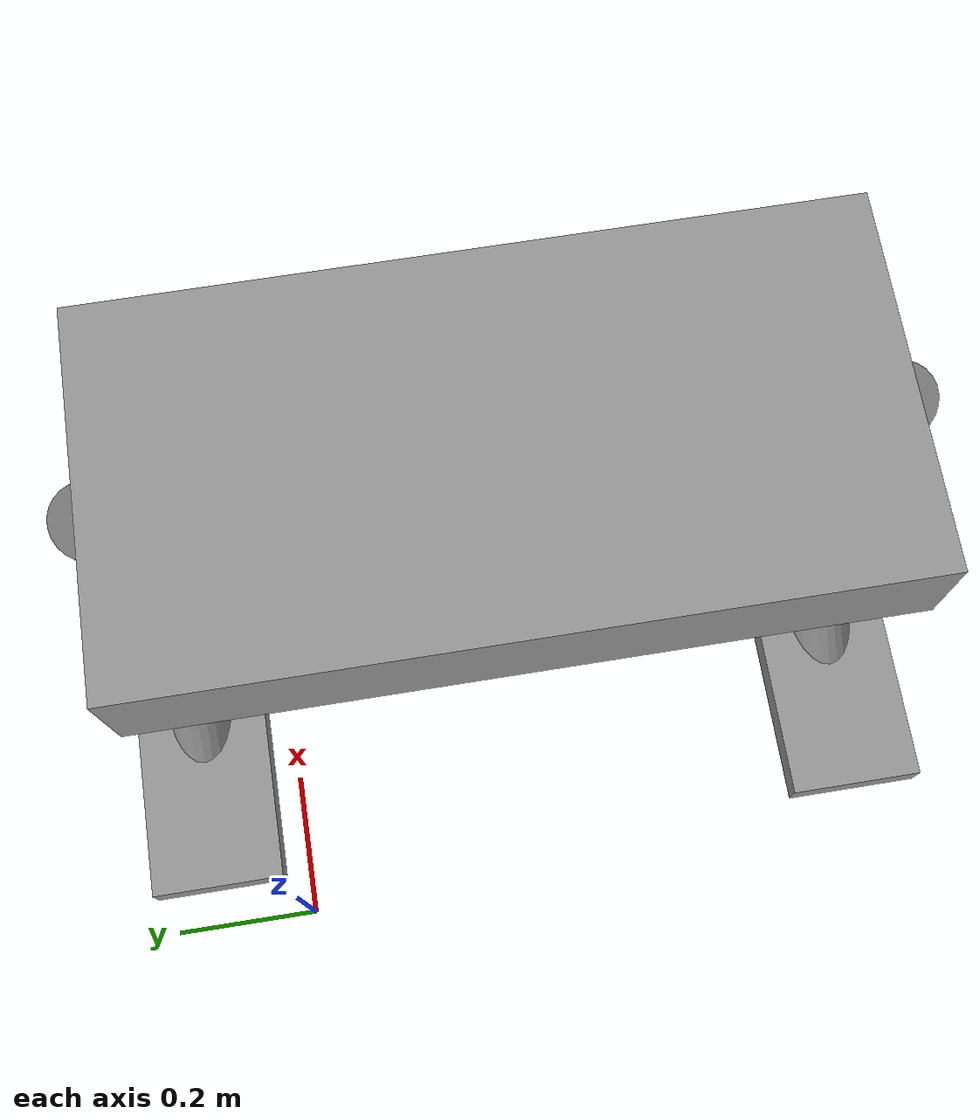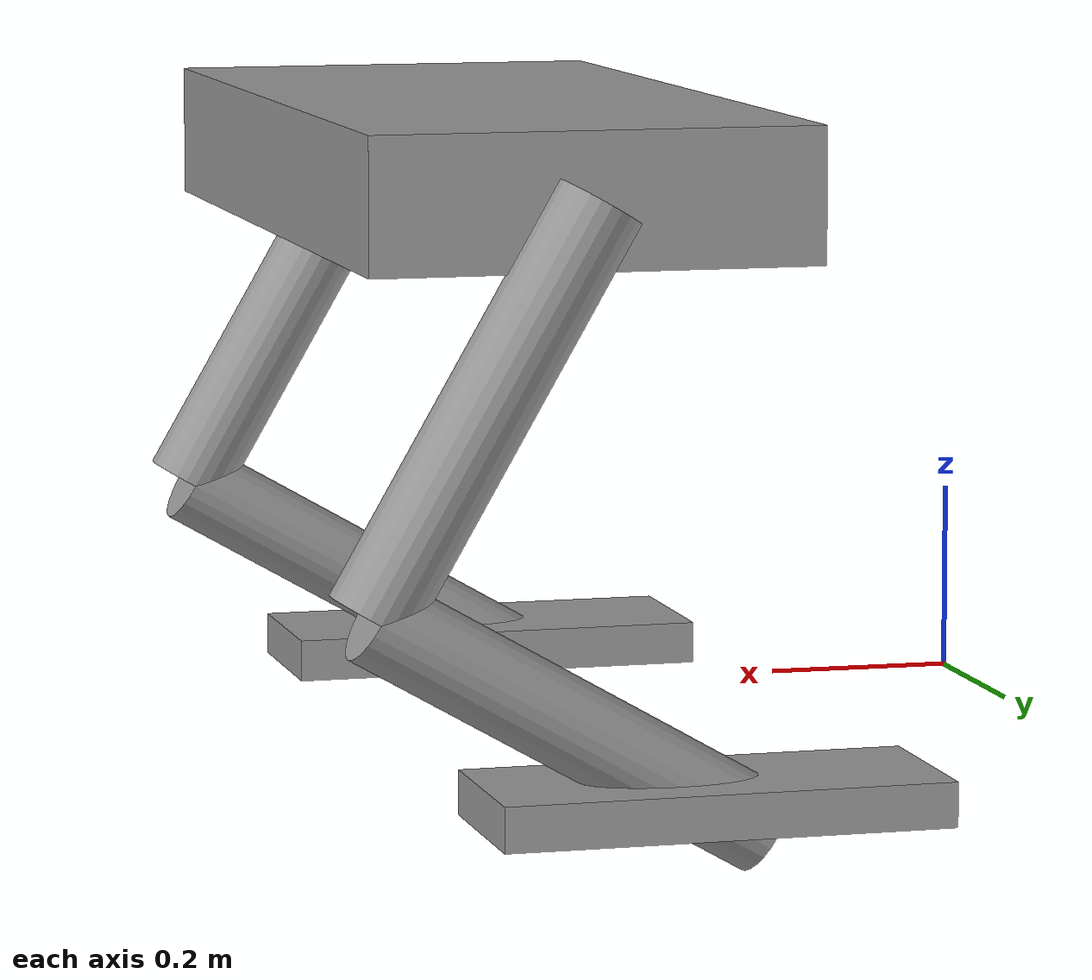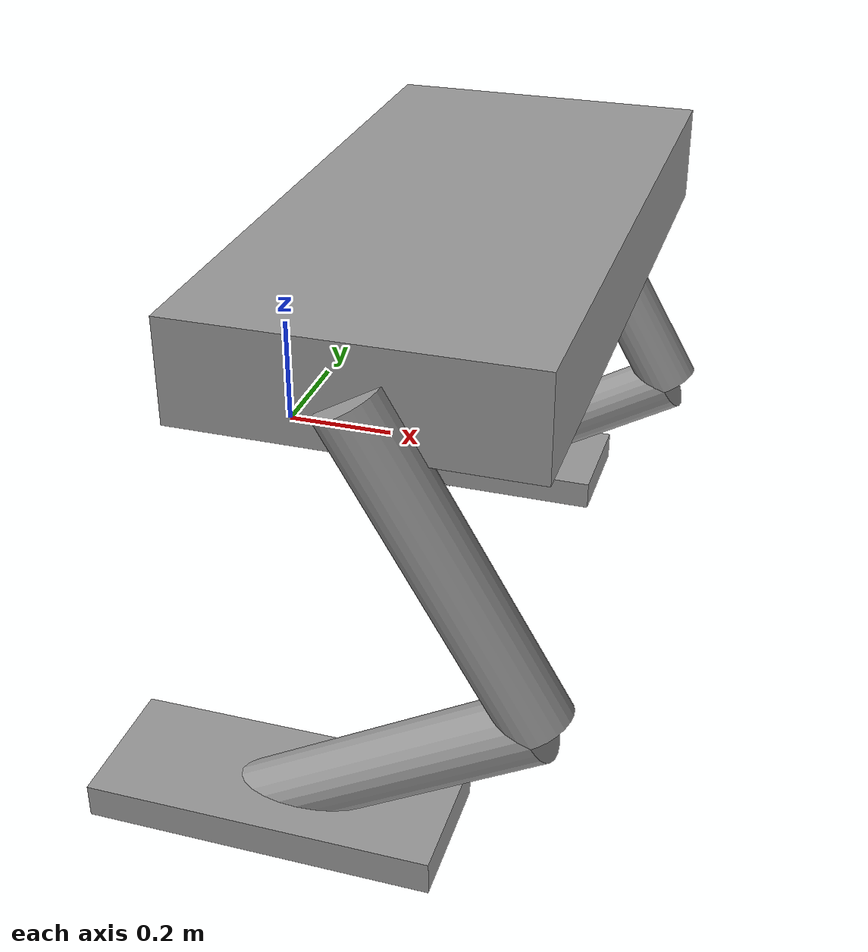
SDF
<?xml version='1.0'?>
<sdf version='1.7'>
  <model name='HumanoidRobot'>
    <link name='link_0'>
      <inertial>
        <mass>1</mass>
        <inertia>
          <ixx>0.166667</ixx>
          <ixy>0</ixy>
          <ixz>0</ixz>
          <iyy>0.166667</iyy>
          <iyz>0</iyz>
          <izz>0.166667</izz>
        </inertia>
        <pose>0 0 0 0 -0 0</pose>
      </inertial>
      <pose>0.440203 -0.34659 0.542291 0 -0 0</pose>
      <gravity>1</gravity>
      <self_collide>0</self_collide>
      <kinematic>0</kinematic>
      <enable_wind>0</enable_wind>
      <visual name='visual'>
        <pose>0 0 0 0 -0 0</pose>
        <geometry>
          <box>
            <size>0.5 1 0.15</size>
          </box>
        </geometry>
        <material>
          <lighting>1</lighting>
          <script>
            <uri>file://media/materials/scripts/gazebo.material</uri>
            <name>Gazebo/Grey</name>
          </script>
          <shader type='pixel'>
            <normal_map>__default__</normal_map>
          </shader>
          <ambient>0.3 0.3 0.3 1</ambient>
          <diffuse>0.7 0.7 0.7 1</diffuse>
          <specular>0.01 0.01 0.01 1</specular>
          <emissive>0 0 0 1</emissive>
        </material>
        <transparency>0</transparency>
        <cast_shadows>1</cast_shadows>
      </visual>
      <collision name='collision'>
        <laser_retro>0</laser_retro>
        <max_contacts>10</max_contacts>
        <pose>0 0 0 0 -0 0</pose>
        <geometry>
          <box>
            <size>0.5 1 0.15</size>
          </box>
        </geometry>
        <surface>
          <friction>
            <ode>
              <mu>1</mu>
              <mu2>1</mu2>
              <fdir1>0 0 0</fdir1>
              <slip1>0</slip1>
              <slip2>0</slip2>
            </ode>
            <torsional>
              <coefficient>1</coefficient>
              <patch_radius>0</patch_radius>
              <surface_radius>0</surface_radius>
              <use_patch_radius>1</use_patch_radius>
              <ode>
                <slip>0</slip>
              </ode>
            </torsional>
          </friction>
          <bounce>
            <restitution_coefficient>0</restitution_coefficient>
            <threshold>1e+06</threshold>
          </bounce>
          <contact>
            <collide_without_contact>0</collide_without_contact>
            <collide_without_contact_bitmask>1</collide_without_contact_bitmask>
            <collide_bitmask>1</collide_bitmask>
            <ode>
              <soft_cfm>0</soft_cfm>
              <soft_erp>0.2</soft_erp>
              <kp>1e+13</kp>
              <kd>1</kd>
              <max_vel>0.01</max_vel>
              <min_depth>0</min_depth>
            </ode>
            <bullet>
              <split_impulse>1</split_impulse>
              <split_impulse_penetration_threshold>-0.01</split_impulse_penetration_threshold>
              <soft_cfm>0</soft_cfm>
              <soft_erp>0.2</soft_erp>
              <kp>1e+13</kp>
              <kd>1</kd>
            </bullet>
          </contact>
        </surface>
      </collision>
    </link>
    <link name='link_1'>
      <inertial>
        <mass>1</mass>
        <inertia>
          <ixx>0.145833</ixx>
          <ixy>0</ixy>
          <ixz>0</ixz>
          <iyy>0.145833</iyy>
          <iyz>0</iyz>
          <izz>0.125</izz>
        </inertia>
        <pose>0 0 0 0 -0 0</pose>
      </inertial>
      <pose>0.565203 -0.84659 0.325785 0 -0.523598 0</pose>
      <gravity>1</gravity>
      <self_collide>0</self_collide>
      <kinematic>0</kinematic>
      <enable_wind>0</enable_wind>
      <visual name='visual'>
        <pose>0 0 0 0 -0 0</pose>
        <geometry>
          <cylinder>
            <radius>0.05</radius>
            <length>0.5</length>
          </cylinder>
        </geometry>
        <material>
          <lighting>1</lighting>
          <script>
            <uri>file://media/materials/scripts/gazebo.material</uri>
            <name>Gazebo/Grey</name>
          </script>
          <shader type='pixel'>
            <normal_map>__default__</normal_map>
          </shader>
          <ambient>0.3 0.3 0.3 1</ambient>
          <diffuse>0.7 0.7 0.7 1</diffuse>
          <specular>0.01 0.01 0.01 1</specular>
          <emissive>0 0 0 1</emissive>
        </material>
        <transparency>0</transparency>
        <cast_shadows>1</cast_shadows>
      </visual>
      <collision name='collision'>
        <laser_retro>0</laser_retro>
        <max_contacts>10</max_contacts>
        <pose>0 0 0 0 -0 0</pose>
        <geometry>
          <cylinder>
            <radius>0.05</radius>
            <length>0.5</length>
          </cylinder>
        </geometry>
        <surface>
          <friction>
            <ode>
              <mu>1</mu>
              <mu2>1</mu2>
              <fdir1>0 0 0</fdir1>
              <slip1>0</slip1>
              <slip2>0</slip2>
            </ode>
            <torsional>
              <coefficient>1</coefficient>
              <patch_radius>0</patch_radius>
              <surface_radius>0</surface_radius>
              <use_patch_radius>1</use_patch_radius>
              <ode>
                <slip>0</slip>
              </ode>
            </torsional>
          </friction>
          <bounce>
            <restitution_coefficient>0</restitution_coefficient>
            <threshold>1e+06</threshold>
          </bounce>
          <contact>
            <collide_without_contact>0</collide_without_contact>
            <collide_without_contact_bitmask>1</collide_without_contact_bitmask>
            <collide_bitmask>1</collide_bitmask>
            <ode>
              <soft_cfm>0</soft_cfm>
              <soft_erp>0.2</soft_erp>
              <kp>1e+13</kp>
              <kd>1</kd>
              <max_vel>0.01</max_vel>
              <min_depth>0</min_depth>
            </ode>
            <bullet>
              <split_impulse>1</split_impulse>
              <split_impulse_penetration_threshold>-0.01</split_impulse_penetration_threshold>
              <soft_cfm>0</soft_cfm>
              <soft_erp>0.2</soft_erp>
              <kp>1e+13</kp>
              <kd>1</kd>
            </bullet>
          </contact>
        </surface>
      </collision>
    </link>
    <link name='link_1_clone'>
      <inertial>
        <mass>1</mass>
        <inertia>
          <ixx>0.145833</ixx>
          <ixy>0</ixy>
          <ixz>0</ixz>
          <iyy>0.145833</iyy>
          <iyz>0</iyz>
          <izz>0.125</izz>
        </inertia>
        <pose>0 0 0 0 -0 0</pose>
      </inertial>
      <pose>0.565203 0.15341 0.325785 0 -0.523598 0</pose>
      <gravity>1</gravity>
      <self_collide>0</self_collide>
      <kinematic>0</kinematic>
      <enable_wind>0</enable_wind>
      <visual name='visual'>
        <pose>0 0 0 0 -0 0</pose>
        <geometry>
          <cylinder>
            <radius>0.05</radius>
            <length>0.5</length>
          </cylinder>
        </geometry>
        <material>
          <lighting>1</lighting>
          <script>
            <uri>file://media/materials/scripts/gazebo.material</uri>
            <name>Gazebo/Grey</name>
          </script>
          <shader type='pixel'>
            <normal_map>__default__</normal_map>
          </shader>
          <ambient>0.3 0.3 0.3 1</ambient>
          <diffuse>0.7 0.7 0.7 1</diffuse>
          <specular>0.01 0.01 0.01 1</specular>
          <emissive>0 0 0 1</emissive>
        </material>
        <transparency>0</transparency>
        <cast_shadows>1</cast_shadows>
      </visual>
      <collision name='collision'>
        <laser_retro>0</laser_retro>
        <max_contacts>10</max_contacts>
        <pose>0 0 0 0 -0 0</pose>
        <geometry>
          <cylinder>
            <radius>0.05</radius>
            <length>0.5</length>
          </cylinder>
        </geometry>
        <surface>
          <friction>
            <ode>
              <mu>1</mu>
              <mu2>1</mu2>
              <fdir1>0 0 0</fdir1>
              <slip1>0</slip1>
              <slip2>0</slip2>
            </ode>
            <torsional>
              <coefficient>1</coefficient>
              <patch_radius>0</patch_radius>
              <surface_radius>0</surface_radius>
              <use_patch_radius>1</use_patch_radius>
              <ode>
                <slip>0</slip>
              </ode>
            </torsional>
          </friction>
          <bounce>
            <restitution_coefficient>0</restitution_coefficient>
            <threshold>1e+06</threshold>
          </bounce>
          <contact>
            <collide_without_contact>0</collide_without_contact>
            <collide_without_contact_bitmask>1</collide_without_contact_bitmask>
            <collide_bitmask>1</collide_bitmask>
            <ode>
              <soft_cfm>0</soft_cfm>
              <soft_erp>0.2</soft_erp>
              <kp>1e+13</kp>
              <kd>1</kd>
              <max_vel>0.01</max_vel>
              <min_depth>0</min_depth>
            </ode>
            <bullet>
              <split_impulse>1</split_impulse>
              <split_impulse_penetration_threshold>-0.01</split_impulse_penetration_threshold>
              <soft_cfm>0</soft_cfm>
              <soft_erp>0.2</soft_erp>
              <kp>1e+13</kp>
              <kd>1</kd>
            </bullet>
          </contact>
        </surface>
      </collision>
    </link>
    <link name='link_1_clone_0'>
      <inertial>
        <mass>1</mass>
        <inertia>
          <ixx>0.145833</ixx>
          <ixy>0</ixy>
          <ixz>0</ixz>
          <iyy>0.145833</iyy>
          <iyz>0</iyz>
          <izz>0.125</izz>
        </inertia>
        <pose>0 0 0 0 -0 0</pose>
      </inertial>
      <pose>0.473697 -0.84659 -0.015721 0 1.0472 0</pose>
      <gravity>1</gravity>
      <self_collide>0</self_collide>
      <kinematic>0</kinematic>
      <enable_wind>0</enable_wind>
      <visual name='visual'>
        <pose>0 0 0 0 -0 0</pose>
        <geometry>
          <cylinder>
            <radius>0.05</radius>
            <length>0.5</length>
          </cylinder>
        </geometry>
        <material>
          <lighting>1</lighting>
          <script>
            <uri>file://media/materials/scripts/gazebo.material</uri>
            <name>Gazebo/Grey</name>
          </script>
          <shader type='pixel'>
            <normal_map>__default__</normal_map>
          </shader>
          <ambient>0.3 0.3 0.3 1</ambient>
          <diffuse>0.7 0.7 0.7 1</diffuse>
          <specular>0.01 0.01 0.01 1</specular>
          <emissive>0 0 0 1</emissive>
        </material>
        <transparency>0</transparency>
        <cast_shadows>1</cast_shadows>
      </visual>
      <collision name='collision'>
        <laser_retro>0</laser_retro>
        <max_contacts>10</max_contacts>
        <pose>0 0 0 0 -0 0</pose>
        <geometry>
          <cylinder>
            <radius>0.05</radius>
            <length>0.5</length>
          </cylinder>
        </geometry>
        <surface>
          <friction>
            <ode>
              <mu>1</mu>
              <mu2>1</mu2>
              <fdir1>0 0 0</fdir1>
              <slip1>0</slip1>
              <slip2>0</slip2>
            </ode>
            <torsional>
              <coefficient>1</coefficient>
              <patch_radius>0</patch_radius>
              <surface_radius>0</surface_radius>
              <use_patch_radius>1</use_patch_radius>
              <ode>
                <slip>0</slip>
              </ode>
            </torsional>
          </friction>
          <bounce>
            <restitution_coefficient>0</restitution_coefficient>
            <threshold>1e+06</threshold>
          </bounce>
          <contact>
            <collide_without_contact>0</collide_without_contact>
            <collide_without_contact_bitmask>1</collide_without_contact_bitmask>
            <collide_bitmask>1</collide_bitmask>
            <ode>
              <soft_cfm>0</soft_cfm>
              <soft_erp>0.2</soft_erp>
              <kp>1e+13</kp>
              <kd>1</kd>
              <max_vel>0.01</max_vel>
              <min_depth>0</min_depth>
            </ode>
            <bullet>
              <split_impulse>1</split_impulse>
              <split_impulse_penetration_threshold>-0.01</split_impulse_penetration_threshold>
              <soft_cfm>0</soft_cfm>
              <soft_erp>0.2</soft_erp>
              <kp>1e+13</kp>
              <kd>1</kd>
            </bullet>
          </contact>
        </surface>
      </collision>
    </link>
    <link name='link_1_clone_0_clone'>
      <inertial>
        <mass>1</mass>
        <inertia>
          <ixx>0.145833</ixx>
          <ixy>0</ixy>
          <ixz>0</ixz>
          <iyy>0.145833</iyy>
          <iyz>0</iyz>
          <izz>0.125</izz>
        </inertia>
        <pose>0 0 0 0 -0 0</pose>
      </inertial>
      <pose>0.473697 0.15341 -0.015721 0 1.0472 0</pose>
      <gravity>1</gravity>
      <self_collide>0</self_collide>
      <kinematic>0</kinematic>
      <enable_wind>0</enable_wind>
      <visual name='visual'>
        <pose>0 0 0 0 -0 0</pose>
        <geometry>
          <cylinder>
            <radius>0.05</radius>
            <length>0.5</length>
          </cylinder>
        </geometry>
        <material>
          <lighting>1</lighting>
          <script>
            <uri>file://media/materials/scripts/gazebo.material</uri>
            <name>Gazebo/Grey</name>
          </script>
          <shader type='pixel'>
            <normal_map>__default__</normal_map>
          </shader>
          <ambient>0.3 0.3 0.3 1</ambient>
          <diffuse>0.7 0.7 0.7 1</diffuse>
          <specular>0.01 0.01 0.01 1</specular>
          <emissive>0 0 0 1</emissive>
        </material>
        <transparency>0</transparency>
        <cast_shadows>1</cast_shadows>
      </visual>
      <collision name='collision'>
        <laser_retro>0</laser_retro>
        <max_contacts>10</max_contacts>
        <pose>0 0 0 0 -0 0</pose>
        <geometry>
          <cylinder>
            <radius>0.05</radius>
            <length>0.5</length>
          </cylinder>
        </geometry>
        <surface>
          <friction>
            <ode>
              <mu>1</mu>
              <mu2>1</mu2>
              <fdir1>0 0 0</fdir1>
              <slip1>0</slip1>
              <slip2>0</slip2>
            </ode>
            <torsional>
              <coefficient>1</coefficient>
              <patch_radius>0</patch_radius>
              <surface_radius>0</surface_radius>
              <use_patch_radius>1</use_patch_radius>
              <ode>
                <slip>0</slip>
              </ode>
            </torsional>
          </friction>
          <bounce>
            <restitution_coefficient>0</restitution_coefficient>
            <threshold>1e+06</threshold>
          </bounce>
          <contact>
            <collide_without_contact>0</collide_without_contact>
            <collide_without_contact_bitmask>1</collide_without_contact_bitmask>
            <collide_bitmask>1</collide_bitmask>
            <ode>
              <soft_cfm>0</soft_cfm>
              <soft_erp>0.2</soft_erp>
              <kp>1e+13</kp>
              <kd>1</kd>
              <max_vel>0.01</max_vel>
              <min_depth>0</min_depth>
            </ode>
            <bullet>
              <split_impulse>1</split_impulse>
              <split_impulse_penetration_threshold>-0.01</split_impulse_penetration_threshold>
              <soft_cfm>0</soft_cfm>
              <soft_erp>0.2</soft_erp>
              <kp>1e+13</kp>
              <kd>1</kd>
            </bullet>
          </contact>
        </surface>
      </collision>
    </link>
    <link name='link_2'>
      <inertial>
        <mass>1</mass>
        <inertia>
          <ixx>0.166667</ixx>
          <ixy>0</ixy>
          <ixz>0</ixz>
          <iyy>0.166667</iyy>
          <iyz>0</iyz>
          <izz>0.166667</izz>
        </inertia>
        <pose>0 0 0 0 -0 0</pose>
      </inertial>
      <pose>0.320604 -0.84659 -0.104109 0 -0 0</pose>
      <gravity>1</gravity>
      <self_collide>0</self_collide>
      <kinematic>0</kinematic>
      <enable_wind>0</enable_wind>
      <visual name='visual'>
        <pose>0 0 0 0 -0 0</pose>
        <geometry>
          <box>
            <size>0.5 0.2 0.05</size>
          </box>
        </geometry>
        <material>
          <lighting>1</lighting>
          <script>
            <uri>file://media/materials/scripts/gazebo.material</uri>
            <name>Gazebo/Grey</name>
          </script>
          <shader type='pixel'>
            <normal_map>__default__</normal_map>
          </shader>
          <ambient>0.3 0.3 0.3 1</ambient>
          <diffuse>0.7 0.7 0.7 1</diffuse>
          <specular>0.01 0.01 0.01 1</specular>
          <emissive>0 0 0 1</emissive>
        </material>
        <transparency>0</transparency>
        <cast_shadows>1</cast_shadows>
      </visual>
      <collision name='collision'>
        <laser_retro>0</laser_retro>
        <max_contacts>10</max_contacts>
        <pose>0 0 0 0 -0 0</pose>
        <geometry>
          <box>
            <size>0.5 0.25 0.05</size>
          </box>
        </geometry>
        <surface>
          <friction>
            <ode>
              <mu>1</mu>
              <mu2>1</mu2>
              <fdir1>0 0 0</fdir1>
              <slip1>0</slip1>
              <slip2>0</slip2>
            </ode>
            <torsional>
              <coefficient>1</coefficient>
              <patch_radius>0</patch_radius>
              <surface_radius>0</surface_radius>
              <use_patch_radius>1</use_patch_radius>
              <ode>
                <slip>0</slip>
              </ode>
            </torsional>
          </friction>
          <bounce>
            <restitution_coefficient>0</restitution_coefficient>
            <threshold>1e+06</threshold>
          </bounce>
          <contact>
            <collide_without_contact>0</collide_without_contact>
            <collide_without_contact_bitmask>1</collide_without_contact_bitmask>
            <collide_bitmask>1</collide_bitmask>
            <ode>
              <soft_cfm>0</soft_cfm>
              <soft_erp>0.2</soft_erp>
              <kp>1e+13</kp>
              <kd>1</kd>
              <max_vel>0.01</max_vel>
              <min_depth>0</min_depth>
            </ode>
            <bullet>
              <split_impulse>1</split_impulse>
              <split_impulse_penetration_threshold>-0.01</split_impulse_penetration_threshold>
              <soft_cfm>0</soft_cfm>
              <soft_erp>0.2</soft_erp>
              <kp>1e+13</kp>
              <kd>1</kd>
            </bullet>
          </contact>
        </surface>
      </collision>
    </link>
    <link name='link_2_clone'>
      <inertial>
        <mass>1</mass>
        <inertia>
          <ixx>0.166667</ixx>
          <ixy>0</ixy>
          <ixz>0</ixz>
          <iyy>0.166667</iyy>
          <iyz>0</iyz>
          <izz>0.166667</izz>
        </inertia>
        <pose>0 0 0 0 -0 0</pose>
      </inertial>
      <pose>0.320604 0.15341 -0.104109 0 -0 0</pose>
      <gravity>1</gravity>
      <self_collide>0</self_collide>
      <kinematic>0</kinematic>
      <enable_wind>0</enable_wind>
      <visual name='visual'>
        <pose>0 0 0 0 -0 0</pose>
        <geometry>
          <box>
            <size>0.5 0.2 0.05</size>
          </box>
        </geometry>
        <material>
          <lighting>1</lighting>
          <script>
            <uri>file://media/materials/scripts/gazebo.material</uri>
            <name>Gazebo/Grey</name>
          </script>
          <shader type='pixel'>
            <normal_map>__default__</normal_map>
          </shader>
          <ambient>0.3 0.3 0.3 1</ambient>
          <diffuse>0.7 0.7 0.7 1</diffuse>
          <specular>0.01 0.01 0.01 1</specular>
          <emissive>0 0 0 1</emissive>
        </material>
        <transparency>0</transparency>
        <cast_shadows>1</cast_shadows>
      </visual>
      <collision name='collision'>
        <laser_retro>0</laser_retro>
        <max_contacts>10</max_contacts>
        <pose>0 0 0 0 -0 0</pose>
        <geometry>
          <box>
            <size>0.5 0.25 0.05</size>
          </box>
        </geometry>
        <surface>
          <friction>
            <ode>
              <mu>1</mu>
              <mu2>1</mu2>
              <fdir1>0 0 0</fdir1>
              <slip1>0</slip1>
              <slip2>0</slip2>
            </ode>
            <torsional>
              <coefficient>1</coefficient>
              <patch_radius>0</patch_radius>
              <surface_radius>0</surface_radius>
              <use_patch_radius>1</use_patch_radius>
              <ode>
                <slip>0</slip>
              </ode>
            </torsional>
          </friction>
          <bounce>
            <restitution_coefficient>0</restitution_coefficient>
            <threshold>1e+06</threshold>
          </bounce>
          <contact>
            <collide_without_contact>0</collide_without_contact>
            <collide_without_contact_bitmask>1</collide_without_contact_bitmask>
            <collide_bitmask>1</collide_bitmask>
            <ode>
              <soft_cfm>0</soft_cfm>
              <soft_erp>0.2</soft_erp>
              <kp>1e+13</kp>
              <kd>1</kd>
              <max_vel>0.01</max_vel>
              <min_depth>0</min_depth>
            </ode>
            <bullet>
              <split_impulse>1</split_impulse>
              <split_impulse_penetration_threshold>-0.01</split_impulse_penetration_threshold>
              <soft_cfm>0</soft_cfm>
              <soft_erp>0.2</soft_erp>
              <kp>1e+13</kp>
              <kd>1</kd>
            </bullet>
          </contact>
        </surface>
      </collision>
    </link>
    <joint name='link_0_JOINT_4' type='revolute'>
      <parent>link_0</parent>
      <child>link_1</child>
      <pose>0 0 0.25 0 -0 0</pose>
      <axis>
        <xyz>1 0 0</xyz>
        <limit>
          <lower>-1.79769e+308</lower>
          <upper>1.79769e+308</upper>
          <effort>-1</effort>
          <velocity>-1</velocity>
        </limit>
        <dynamics>
          <spring_reference>0</spring_reference>
          <spring_stiffness>0</spring_stiffness>
          <damping>0</damping>
        </dynamics>
      </axis>
      <physics>
        <ode>
          <limit>
            <cfm>0</cfm>
            <erp>0.2</erp>
          </limit>
          <suspension>
            <cfm>0</cfm>
            <erp>0.2</erp>
          </suspension>
        </ode>
      </physics>
    </joint>
    <joint name='link_0_JOINT_5' type='revolute'>
      <parent>link_0</parent>
      <child>link_1_clone</child>
      <pose>0 0 0.25 0 -0 0</pose>
      <axis>
        <xyz>1 0 0</xyz>
        <limit>
          <lower>-1.79769e+308</lower>
          <upper>1.79769e+308</upper>
          <effort>-1</effort>
          <velocity>-1</velocity>
        </limit>
        <dynamics>
          <spring_reference>0</spring_reference>
          <spring_stiffness>0</spring_stiffness>
          <damping>0</damping>
        </dynamics>
      </axis>
      <physics>
        <ode>
          <limit>
            <cfm>0</cfm>
            <erp>0.2</erp>
          </limit>
          <suspension>
            <cfm>0</cfm>
            <erp>0.2</erp>
          </suspension>
        </ode>
      </physics>
    </joint>
    <joint name='link_1_JOINT_6' type='revolute'>
      <parent>link_1</parent>
      <child>link_1_clone_0</child>
      <pose>0 0 0.25 -0.02 0 0</pose>
      <axis>
        <xyz>1 0 0</xyz>
        <limit>
          <lower>-1.79769e+308</lower>
          <upper>1.79769e+308</upper>
          <effort>-1</effort>
          <velocity>-1</velocity>
        </limit>
        <dynamics>
          <spring_reference>0</spring_reference>
          <spring_stiffness>0</spring_stiffness>
          <damping>0</damping>
        </dynamics>
      </axis>
      <physics>
        <ode>
          <limit>
            <cfm>0</cfm>
            <erp>0.2</erp>
          </limit>
          <suspension>
            <cfm>0</cfm>
            <erp>0.2</erp>
          </suspension>
        </ode>
      </physics>
    </joint>
    <joint name='link_1_clone_0_JOINT_8' type='revolute'>
      <parent>link_1_clone_0</parent>
      <child>link_2</child>
      <pose>0 0 0 0 -0 0</pose>
      <axis>
        <xyz>1 0 0</xyz>
        <limit>
          <lower>-1.79769e+308</lower>
          <upper>1.79769e+308</upper>
          <effort>-1</effort>
          <velocity>-1</velocity>
        </limit>
        <dynamics>
          <spring_reference>0</spring_reference>
          <spring_stiffness>0</spring_stiffness>
          <damping>0</damping>
        </dynamics>
      </axis>
      <physics>
        <ode>
          <limit>
            <cfm>0</cfm>
            <erp>0.2</erp>
          </limit>
          <suspension>
            <cfm>0</cfm>
            <erp>0.2</erp>
          </suspension>
        </ode>
      </physics>
    </joint>
    <joint name='link_1_clone_0_clone_JOINT_9' type='revolute'>
      <parent>link_1_clone_0_clone</parent>
      <child>link_2_clone</child>
      <pose>0 0 0 0 -0 0</pose>
      <axis>
        <xyz>1 0 0</xyz>
        <limit>
          <lower>-1.79769e+308</lower>
          <upper>1.79769e+308</upper>
          <effort>-1</effort>
          <velocity>-1</velocity>
        </limit>
        <dynamics>
          <spring_reference>0</spring_reference>
          <spring_stiffness>0</spring_stiffness>
          <damping>0</damping>
        </dynamics>
      </axis>
      <physics>
        <ode>
          <limit>
            <cfm>0</cfm>
            <erp>0.2</erp>
          </limit>
          <suspension>
            <cfm>0</cfm>
            <erp>0.2</erp>
          </suspension>
        </ode>
      </physics>
    </joint>
    <joint name='link_1_clone_JOINT_7' type='revolute'>
      <parent>link_1_clone</parent>
      <child>link_1_clone_0_clone</child>
      <pose>0 0 0.25 0 -0 0</pose>
      <axis>
        <xyz>1 0 0</xyz>
        <limit>
          <lower>-1.79769e+308</lower>
          <upper>1.79769e+308</upper>
          <effort>-1</effort>
          <velocity>-1</velocity>
        </limit>
        <dynamics>
          <spring_reference>0</spring_reference>
          <spring_stiffness>0</spring_stiffness>
          <damping>0</damping>
        </dynamics>
      </axis>
      <physics>
        <ode>
          <limit>
            <cfm>0</cfm>
            <erp>0.2</erp>
          </limit>
          <suspension>
            <cfm>0</cfm>
            <erp>0.2</erp>
          </suspension>
        </ode>
      </physics>
    </joint>
    <static>0</static>
    <allow_auto_disable>1</allow_auto_disable>
  </model>
</sdf>
